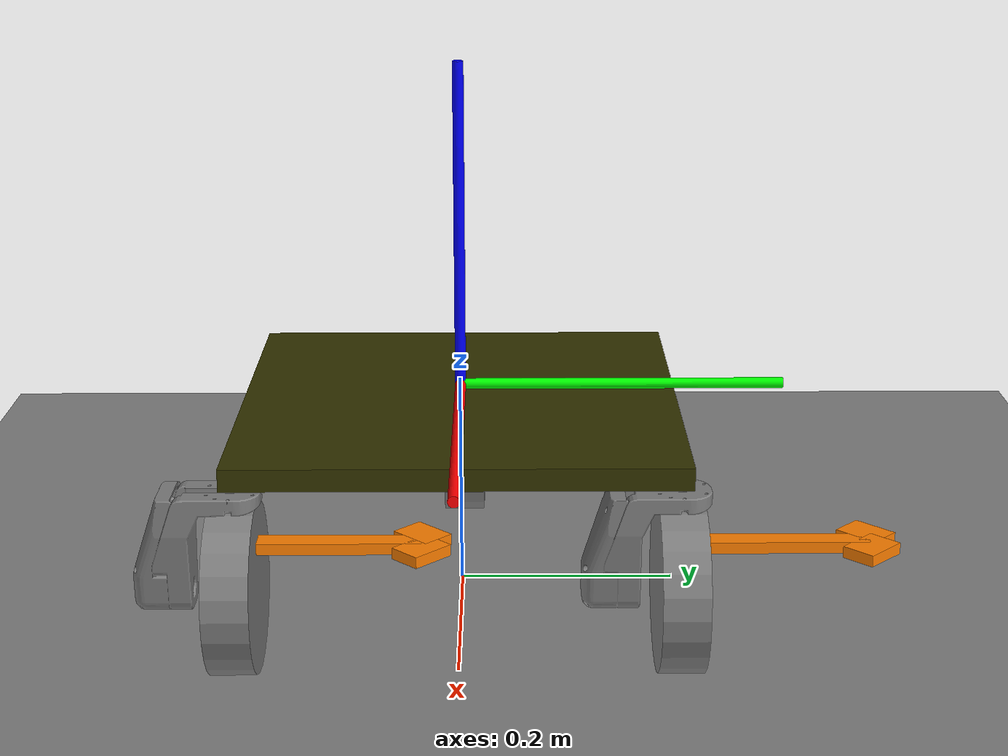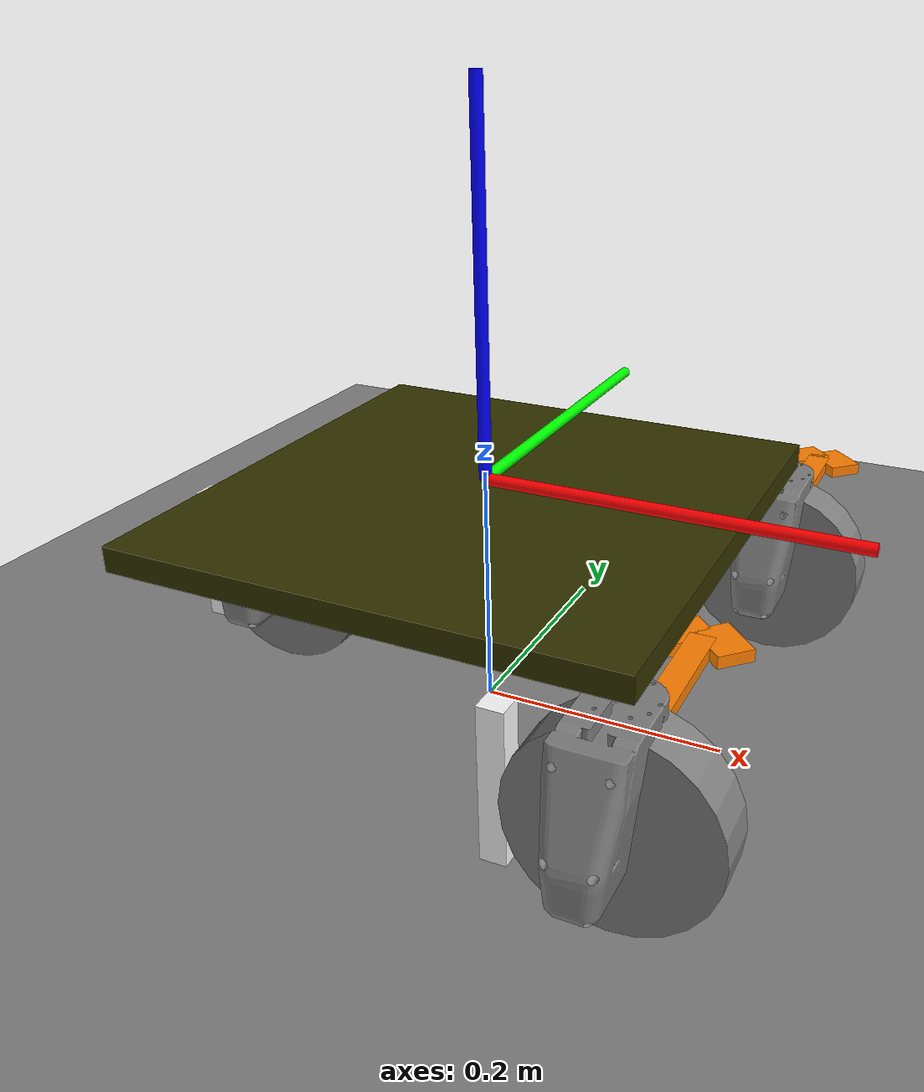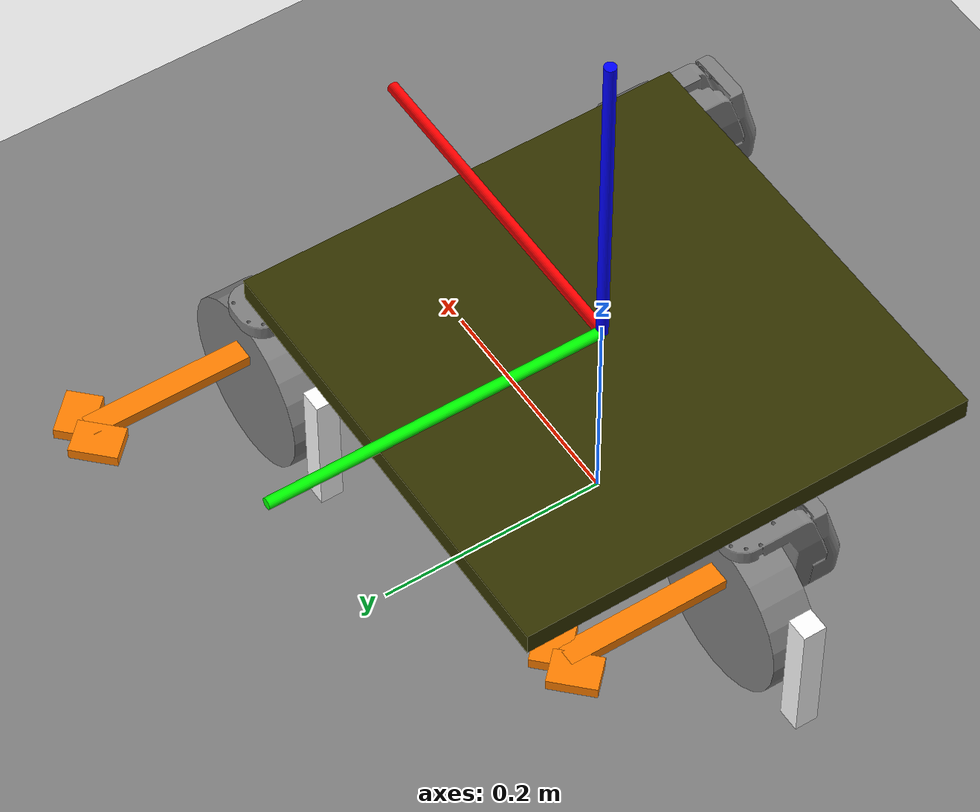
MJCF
<mujoco model="humaniod">
    <compiler angle="radian" autolimits="true" eulerseq="xyz" meshdir="meshes"/>
    <option timestep="0.002" iterations="100" integrator="implicitfast" density="0" viscosity="0" />

    <visual>
        <headlight diffuse="0.6 0.6 0.6" ambient="0.3 0.3 0.3" specular="0 0 0"/>
        <rgba haze="0.15 0.25 0.35 1"/>
        <global azimuth="150" elevation="-20"/>
    </visual>

    <asset>
    	<texture name="plane" type="2d" builtin="checker" rgb1=".1 .1 .1" rgb2=".9 .9 .9" width="512" height="512" />
        <material name="plane" texture="plane" reflectance="0.3" texrepeat="1 1" texuniform="true" />
        <texture type="skybox" builtin="gradient" rgb1="0.3 0.5 0.7" rgb2="0 0 0" width="512" height="3072"/>

        <mesh name="steering" content_type="model/stl" file="RFW_RAW.STL" />
    </asset>

    <worldbody>
    	<geom name="floor" pos="0 0 0" size="10 10 0.1" type="plane" material="plane" condim="3" contype="1" conaffinity="65535" />
        <light directional="true" ambient=".3 .3 .3" pos="30 30 30" dir="0 -2 -1" diffuse=".5 .5 .5" specular=".5 .5 .5" />

        <body name="base" pos="0.0 0.0 0.175" euler="0 0 0">
            <joint name="base_x" type="slide" axis="1 0 0" damping="0" frictionloss="0" armature="0" />
            <joint name="base_y" type="slide" axis="0 1 0" damping="0" frictionloss="0" armature="0" />
            <joint name="base_yaw" type="hinge" axis="0 0 1" damping="0" frictionloss="0" armature="0" />
            <geom type="box" size="0.2 0.2 0.01" pos="0.0 0.0 0.0" mass="32" condim="3" contype="1" conaffinity="65535" group="1" rgba="0.2 0.2 0.0 1" />

            <!-- 底盘坐标系：X轴红色，Y轴绿色，Z轴蓝色 -->
            <geom type="cylinder" size="0.005 0.15" pos="0.15 0 0.02" euler="0 1.5708 0" rgba="1 0 0 1" contype="0" conaffinity="0" group="0" />
            <geom type="cylinder" size="0.005 0.15" pos="0 0.15 0.02" euler="1.5708 0 0" rgba="0 1 0 1" contype="0" conaffinity="0" group="0" />
            <geom type="cylinder" size="0.005 0.15" pos="0 0 0.17" euler="0 0 0" rgba="0 0 1 1" contype="0" conaffinity="0" group="0" />

            <body name="base_s1" pos="0.19 -0.19 -0.012" euler="0 0 1.5708">
                <inertial pos="-0.0373 0.0 -0.0404" mass="0.3126" fullinertia="3.69e-4 4.40e-4 2.08e-4 0.0 1.20e-4 0.0" />
                <joint name="j_base_s1" type="hinge" axis="0 0 1" range="-3.14 3.14" armature="0" damping="0.005" frictionloss="0" />
                <geom type="mesh" mesh="steering" pos="0.0 0.0 0.0" condim="3" contype="0" conaffinity="0" group="1" />

                <!-- 轮1方向指示箭头（红色=前方） -->
                <geom type="box" size="0.08 0.01 0.005" pos="0.08 0 -0.05" euler="0 0 0" rgba="1 0.5 0 1" contype="0" conaffinity="0" group="0" />
                <geom type="box" size="0.02 0.015 0.005" pos="0.16 0.015 -0.05" euler="0 0 -0.785" rgba="1 0.5 0 1" contype="0" conaffinity="0" group="0" />
                <geom type="box" size="0.02 0.015 0.005" pos="0.16 -0.015 -0.05" euler="0 0 0.785" rgba="1 0.5 0 1" contype="0" conaffinity="0" group="0" />

                <body name="base_r1" pos="0 0 -0.088">
                    <joint name="j_base_r1" type="hinge" axis="1 0 0" armature="0" damping="0.005" frictionloss="0" />
                    <geom type="cylinder" size="0.075 0.02" pos="0 0 0" euler="0 1.5708 0" mass="4.11" condim="6" contype="1" conaffinity="65535" group="1" friction="1.0 0.005 0.0001" />
                    <!-- 轮子侧面标记（白色） -->
                    <geom type="box" size="0.06 0.01 0.01" pos="0 0.085 0" euler="0 1.5708 0" rgba="1 1 1 1" contype="0" conaffinity="0" group="0" />
                </body>
            </body>
            <body name="base_s2" pos="0.19 0.19 -0.012" euler="0 0 1.5708">
                <inertial pos="-0.0373 0.0 -0.0404" mass="0.3126" fullinertia="3.69e-4 4.40e-4 2.08e-4 0.0 1.20e-4 0.0" />
                <joint name="j_base_s2" type="hinge" axis="0 0 1" range="-3.14 3.14" armature="0" damping="0.005" frictionloss="0" />
                <geom type="mesh" mesh="steering" pos="0.0 0.0 0.0" condim="3" contype="0" conaffinity="0" group="1" />

                <!-- 轮2方向指示箭头（红色=前方） -->
                <geom type="box" size="0.08 0.01 0.005" pos="0.08 0 -0.05" euler="0 0 0" rgba="1 0.5 0 1" contype="0" conaffinity="0" group="0" />
                <geom type="box" size="0.02 0.015 0.005" pos="0.16 0.015 -0.05" euler="0 0 -0.785" rgba="1 0.5 0 1" contype="0" conaffinity="0" group="0" />
                <geom type="box" size="0.02 0.015 0.005" pos="0.16 -0.015 -0.05" euler="0 0 0.785" rgba="1 0.5 0 1" contype="0" conaffinity="0" group="0" />

                <body name="base_r2" pos="0 0 -0.088">
                    <joint name="j_base_r2" type="hinge" axis="1 0 0" armature="0" damping="0.005" frictionloss="0" />
                    <geom type="cylinder" size="0.075 0.02" pos="0 0 0" euler="0 1.5708 0" mass="4.11" condim="6" contype="1" conaffinity="65535" group="1" friction="1.0 0.005 0.0001" />
                    <!-- 轮子侧面标记（白色） -->
                    <geom type="box" size="0.06 0.01 0.01" pos="0 0.085 0" euler="0 1.5708 0" rgba="1 1 1 1" contype="0" conaffinity="0" group="0" />
                </body>
            </body>
            <body name="base_s3" pos="-0.19 0 -0.012" euler="0 0 1.5708">
                <inertial pos="-0.0373 0.0 -0.0404" mass="0.3126" fullinertia="3.69e-4 4.40e-4 2.08e-4 0.0 1.20e-4 0.0" />
                <joint name="j_base_s3" type="hinge" axis="0 0 1" range="-3.14 3.14" armature="0" damping="0.005" frictionloss="0" />
                <geom type="mesh" mesh="steering" pos="0.0 0.0 0.0" condim="3" contype="0" conaffinity="0" group="1" />

                <!-- 轮3方向指示箭头（红色=前方） -->
                <geom type="box" size="0.08 0.01 0.005" pos="0.08 0 -0.05" euler="0 0 0" rgba="1 0.5 0 1" contype="0" conaffinity="0" group="0" />
                <geom type="box" size="0.02 0.015 0.005" pos="0.16 0.015 -0.05" euler="0 0 -0.785" rgba="1 0.5 0 1" contype="0" conaffinity="0" group="0" />
                <geom type="box" size="0.02 0.015 0.005" pos="0.16 -0.015 -0.05" euler="0 0 0.785" rgba="1 0.5 0 1" contype="0" conaffinity="0" group="0" />

                <body name="base_r3" pos="0 0 -0.088">
                    <joint name="j_base_r3" type="hinge" axis="1 0 0" armature="0" damping="0.005" frictionloss="0" />
                    <geom type="cylinder" size="0.075 0.02" pos="0 0 0" euler="0 1.5708 0" mass="4.11" condim="6" contype="1" conaffinity="65535" group="1" friction="1.0 0.005 0.0001" />
                    <!-- 轮子侧面标记（白色） -->
                    <geom type="box" size="0.06 0.01 0.01" pos="0 0.085 0" euler="0 1.5708 0" rgba="1 1 1 1" contype="0" conaffinity="0" group="0" />
                </body>
            </body>
        </body>
    </worldbody>

    <actuator>
        <position name="base_s1" joint="j_base_s1" kp="1800" kv="80" ctrlrange="-3.14 3.14" />
        <position name="base_s2" joint="j_base_s2" kp="1800" kv="80" ctrlrange="-3.14 3.14" />
        <position name="base_s3" joint="j_base_s3" kp="1800" kv="80" ctrlrange="-3.14 3.14" />
        <velocity name="base_r1" joint="j_base_r1" kv="0.1" ctrlrange="-100 100" forcerange="-50 50" />
        <velocity name="base_r2" joint="j_base_r2" kv="0.1" ctrlrange="-100 100" forcerange="-50 50" />
        <velocity name="base_r3" joint="j_base_r3" kv="0.1" ctrlrange="-100 100" forcerange="-50 50" />
    </actuator>

</mujoco>
